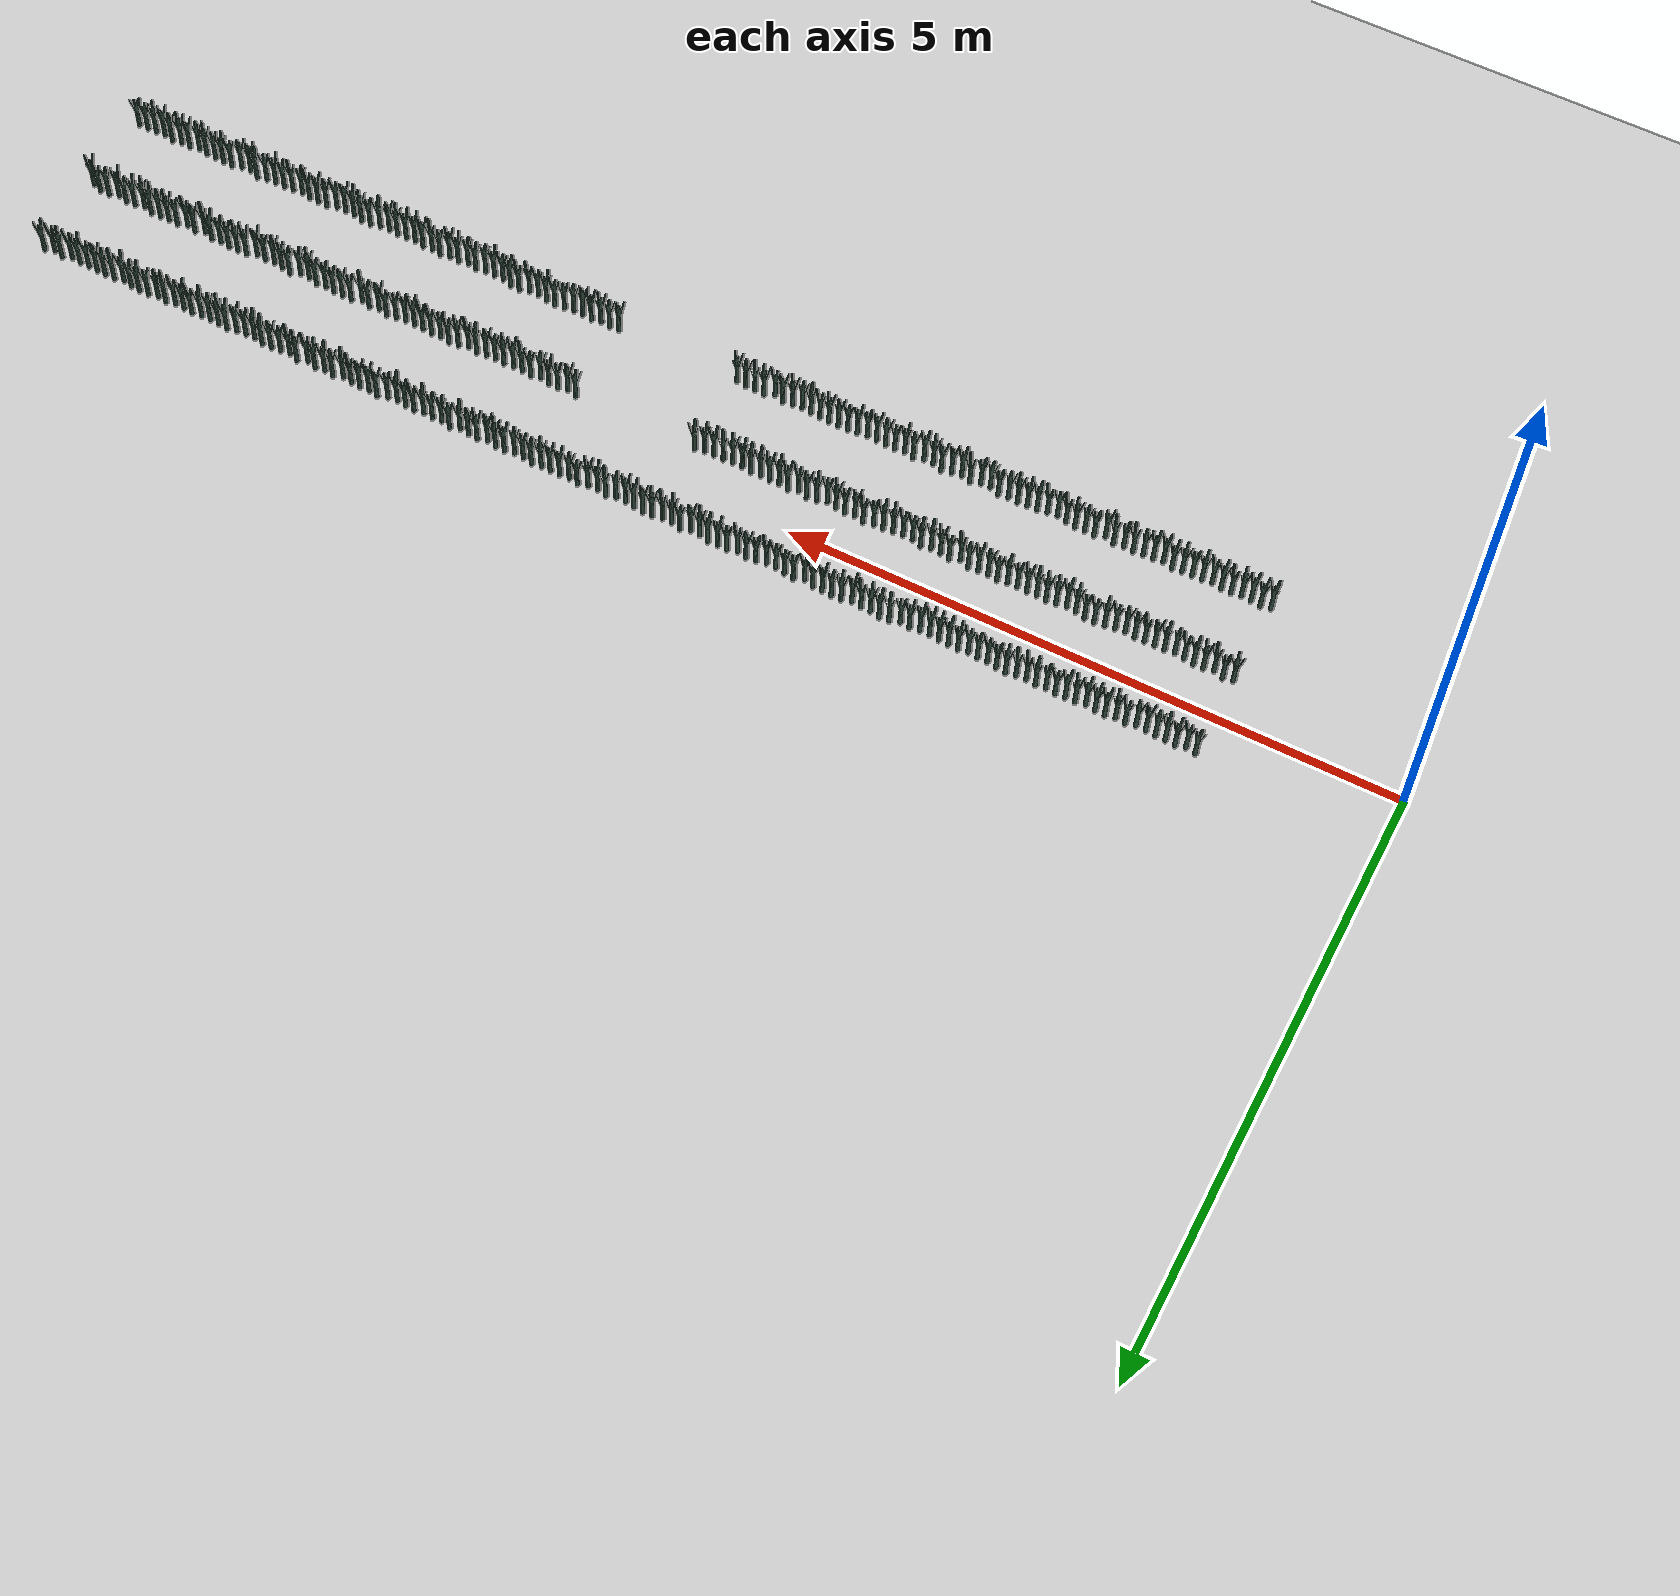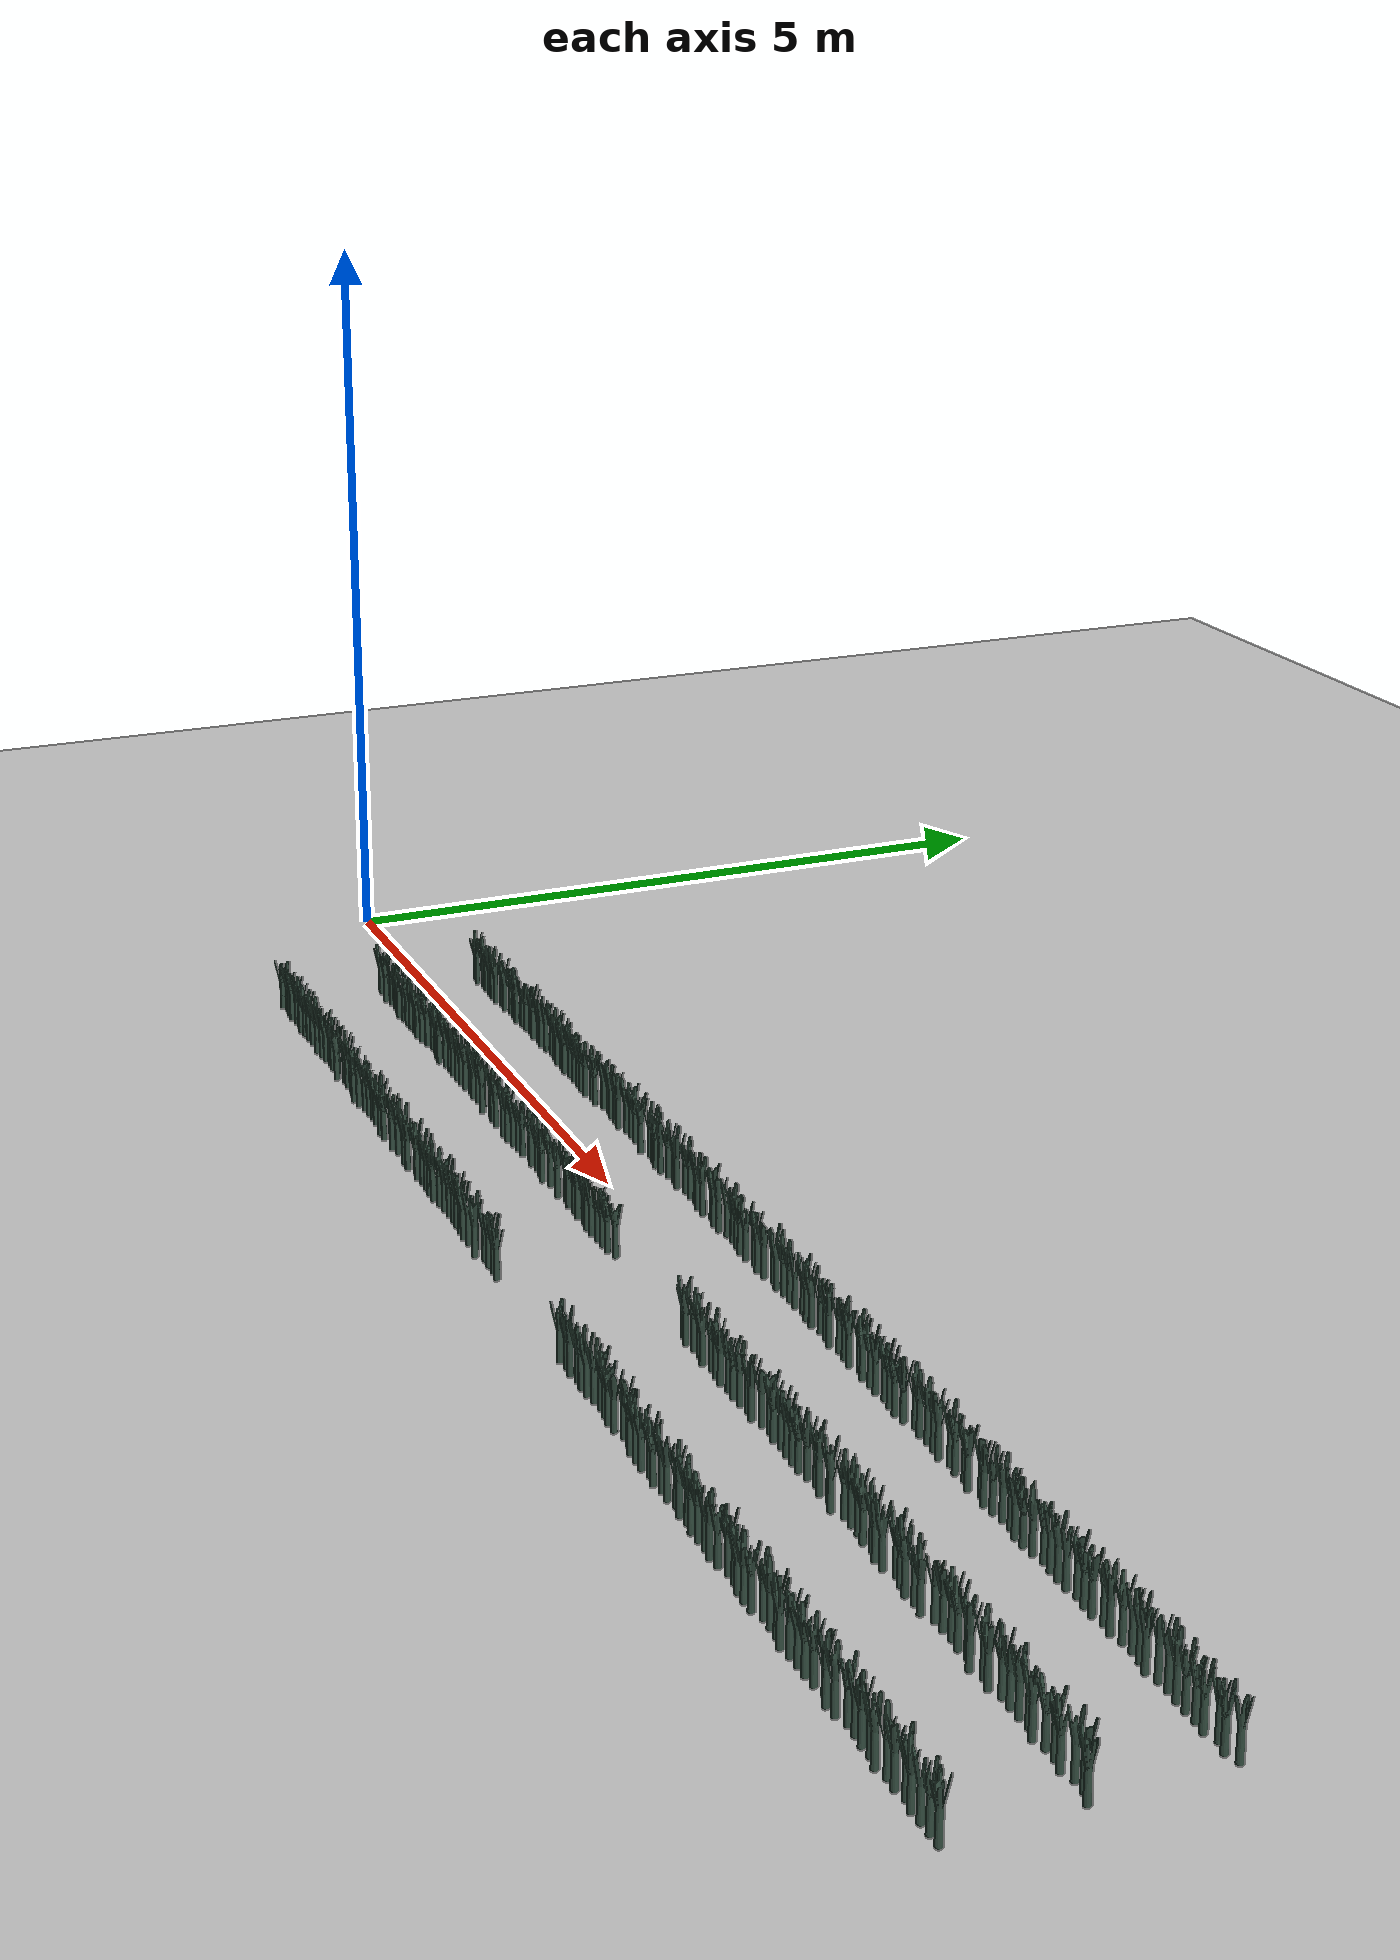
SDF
<sdf version="1.6">
 <world name="default">
  <light name="sun" type="directional">
   <pose>0 0 10 0 -0 0</pose>
   <diffuse>0.5 0.5 0.5 1</diffuse>
   <specular>0.1 0.1 0.1 1</specular>
   <attenuation>
    <range>1000</range>
    <constant>0.9</constant>
    <linear>0.01</linear>
    <quadratic>0.001</quadratic>
   </attenuation>
   <direction>0.9 0.5 -1</direction>
  </light>
  <scene><background>130 200 255 1</background><ambient>130 140 140 1</ambient></scene>
  <include><uri>model://dirt_plane</uri></include>
  <include><uri>model://Leek</uri><pose>1.500000 0.348738 0.15 0 0 -11.359666</pose><static>0</static></include>
  <include>
   <uri>model://Leek</uri>
   <pose>1.580000 0.333221 0.15 0 0 -151.008366</pose>
   <static>0</static>
  </include>
  <include><uri>model://Leek</uri><pose>1.660000 0.351720 0.15 0 0 15.477362</pose><static>0</static></include>
  <include><uri>model://Leek</uri><pose>1.740000 0.344954 0.15 0 0 -45.416736</pose><static>0</static></include>
  <include><uri>model://Leek</uri><pose>1.820000 0.342499 0.15 0 0 -67.511657</pose><static>0</static></include>
  <include>
   <uri>model://Leek</uri>
   <pose>1.900000 0.334902 0.15 0 0 -135.884695</pose>
   <static>0</static>
  </include>
  <include>
   <uri>model://Leek</uri>
   <pose>1.980000 0.331353 0.15 0 0 -167.820252</pose>
   <static>0</static>
  </include>
  <include><uri>model://Leek</uri><pose>2.060000 0.352762 0.15 0 0 24.856615</pose><static>0</static></include>
  <include><uri>model://Leek</uri><pose>2.140000 0.341317 0.15 0 0 -78.144152</pose><static>0</static></include>
  <include><uri>model://Leek</uri><pose>2.220000 0.358856 0.15 0 0 79.706850</pose><static>0</static></include>
  <include><uri>model://Leek</uri><pose>2.300000 0.355204 0.15 0 0 46.836287</pose><static>0</static></include>
  <include><uri>model://Leek</uri><pose>2.380000 0.341253 0.15 0 0 -78.719247</pose><static>0</static></include>
  <include><uri>model://Leek</uri><pose>2.460000 0.357390 0.15 0 0 66.514050</pose><static>0</static></include>
  <include><uri>model://Leek</uri><pose>2.540000 0.356073 0.15 0 0 54.658252</pose><static>0</static></include>
  <include><uri>model://Leek</uri><pose>2.620000 0.362572 0.15 0 0 113.151174</pose><static>0</static></include>
  <include><uri>model://Leek</uri><pose>2.700000 0.349439 0.15 0 0 -5.046876</pose><static>0</static></include>
  <include><uri>model://Leek</uri><pose>2.780000 0.359624 0.15 0 0 86.620214</pose><static>0</static></include>
  <include><uri>model://Leek</uri><pose>2.860000 0.347820 0.15 0 0 -19.620494</pose><static>0</static></include>
  <include><uri>model://Leek</uri><pose>2.940000 0.354084 0.15 0 0 36.755584</pose><static>0</static></include>
  <include><uri>model://Leek</uri><pose>3.020000 0.367821 0.15 0 0 160.388233</pose><static>0</static></include>
  <include><uri>model://Leek</uri><pose>3.100000 0.359192 0.15 0 0 82.731494</pose><static>0</static></include>
  <include><uri>model://Leek</uri><pose>3.180000 0.343723 0.15 0 0 -56.489549</pose><static>0</static></include>
  <include><uri>model://Leek</uri><pose>3.260000 0.346658 0.15 0 0 -30.073911</pose><static>0</static></include>
  <include>
   <uri>model://Leek</uri>
   <pose>3.340000 0.336032 0.15 0 0 -125.714153</pose>
   <static>0</static>
  </include>
  <include><uri>model://Leek</uri><pose>3.420000 0.348940 0.15 0 0 -9.537875</pose><static>0</static></include>
  <include><uri>model://Leek</uri><pose>3.500000 0.344928 0.15 0 0 -45.650852</pose><static>0</static></include>
  <include><uri>model://Leek</uri><pose>3.580000 0.343357 0.15 0 0 -59.785299</pose><static>0</static></include>
  <include>
   <uri>model://Leek</uri>
   <pose>3.660000 0.332327 0.15 0 0 -159.055358</pose>
   <static>0</static>
  </include>
  <include>
   <uri>model://Leek</uri>
   <pose>3.740000 0.331457 0.15 0 0 -166.886024</pose>
   <static>0</static>
  </include>
  <include><uri>model://Leek</uri><pose>3.820000 0.348917 0.15 0 0 -9.749540</pose><static>0</static></include>
  <include>
   <uri>model://Leek</uri>
   <pose>3.900000 0.335416 0.15 0 0 -131.257299</pose>
   <static>0</static>
  </include>
  <include><uri>model://Leek</uri><pose>3.980000 0.364531 0.15 0 0 130.778746</pose><static>0</static></include>
  <include><uri>model://Leek</uri><pose>4.060000 0.369375 0.15 0 0 174.371801</pose><static>0</static></include>
  <include><uri>model://Leek</uri><pose>4.140000 0.353168 0.15 0 0 28.516348</pose><static>0</static></include>
  <include><uri>model://Leek</uri><pose>4.220000 0.352020 0.15 0 0 18.183334</pose><static>0</static></include>
  <include><uri>model://Leek</uri><pose>4.300000 0.339839 0.15 0 0 -91.451803</pose><static>0</static></include>
  <include><uri>model://Leek</uri><pose>4.380000 0.362245 0.15 0 0 110.201775</pose><static>0</static></include>
  <include><uri>model://Leek</uri><pose>4.460000 0.366224 0.15 0 0 146.019617</pose><static>0</static></include>
  <include><uri>model://Leek</uri><pose>4.540000 0.358682 0.15 0 0 78.137586</pose><static>0</static></include>
  <include><uri>model://Leek</uri><pose>4.620000 0.358400 0.15 0 0 75.601485</pose><static>0</static></include>
  <include>
   <uri>model://Leek</uri>
   <pose>4.700000 0.331868 0.15 0 0 -163.186843</pose>
   <static>0</static>
  </include>
  <include><uri>model://Leek</uri><pose>4.780000 0.364064 0.15 0 0 126.572442</pose><static>0</static></include>
  <include><uri>model://Leek</uri><pose>4.860000 0.353533 0.15 0 0 31.793128</pose><static>0</static></include>
  <include>
   <uri>model://Leek</uri>
   <pose>4.940000 0.334684 0.15 0 0 -137.845331</pose>
   <static>0</static>
  </include>
  <include>
   <uri>model://Leek</uri>
   <pose>5.020000 0.334600 0.15 0 0 -138.603666</pose>
   <static>0</static>
  </include>
  <include><uri>model://Leek</uri><pose>5.100000 0.352918 0.15 0 0 26.264780</pose><static>0</static></include>
  <include><uri>model://Leek</uri><pose>5.180000 0.360012 0.15 0 0 90.109463</pose><static>0</static></include>
  <include><uri>model://Leek</uri><pose>5.260000 0.341591 0.15 0 0 -75.680269</pose><static>0</static></include>
  <include><uri>model://Leek</uri><pose>5.340000 0.366113 0.15 0 0 145.020598</pose><static>0</static></include>
  <include><uri>model://Leek</uri><pose>5.420000 0.362188 0.15 0 0 109.691198</pose><static>0</static></include>
  <include><uri>model://Leek</uri><pose>5.500000 0.365884 0.15 0 0 142.953897</pose><static>0</static></include>
  <include><uri>model://Leek</uri><pose>5.580000 0.344116 0.15 0 0 -52.952755</pose><static>0</static></include>
  <include><uri>model://Leek</uri><pose>5.660000 0.340490 0.15 0 0 -85.592345</pose><static>0</static></include>
  <include><uri>model://Leek</uri><pose>5.740000 0.367463 0.15 0 0 157.165037</pose><static>0</static></include>
  <include><uri>model://Leek</uri><pose>5.820000 0.344788 0.15 0 0 -46.906939</pose><static>0</static></include>
  <include><uri>model://Leek</uri><pose>5.900000 0.340849 0.15 0 0 -82.356152</pose><static>0</static></include>
  <include><uri>model://Leek</uri><pose>5.980000 0.360183 0.15 0 0 91.647741</pose><static>0</static></include>
  <include><uri>model://Leek</uri><pose>6.060000 0.362126 0.15 0 0 109.132580</pose><static>0</static></include>
  <include><uri>model://Leek</uri><pose>6.140000 0.351895 0.15 0 0 17.050648</pose><static>0</static></include>
  <include>
   <uri>model://Leek</uri>
   <pose>6.220000 0.337024 0.15 0 0 -116.781532</pose>
   <static>0</static>
  </include>
  <include>
   <uri>model://Leek</uri>
   <pose>6.300000 0.337617 0.15 0 0 -111.443870</pose>
   <static>0</static>
  </include>
  <include><uri>model://Leek</uri><pose>6.380000 0.358279 0.15 0 0 74.507002</pose><static>0</static></include>
  <include>
   <uri>model://Leek</uri>
   <pose>6.460000 0.338496 0.15 0 0 -103.537660</pose>
   <static>0</static>
  </include>
  <include><uri>model://Leek</uri><pose>6.540000 0.342775 0.15 0 0 -65.020835</pose><static>0</static></include>
  <include><uri>model://Leek</uri><pose>6.620000 0.368189 0.15 0 0 163.696988</pose><static>0</static></include>
  <include><uri>model://Leek</uri><pose>6.700000 0.348803 0.15 0 0 -10.768840</pose><static>0</static></include>
  <include><uri>model://Leek</uri><pose>6.780000 0.357306 0.15 0 0 65.749703</pose><static>0</static></include>
  <include><uri>model://Leek</uri><pose>6.860000 0.358685 0.15 0 0 78.162489</pose><static>0</static></include>
  <include><uri>model://Leek</uri><pose>6.940000 0.354590 0.15 0 0 41.308257</pose><static>0</static></include>
  <include><uri>model://Leek</uri><pose>7.020000 0.366249 0.15 0 0 146.242435</pose><static>0</static></include>
  <include><uri>model://Leek</uri><pose>7.100000 0.348714 0.15 0 0 -11.571958</pose><static>0</static></include>
  <include><uri>model://Leek</uri><pose>7.180000 0.341825 0.15 0 0 -73.578949</pose><static>0</static></include>
  <include><uri>model://Leek</uri><pose>7.260000 0.359566 0.15 0 0 86.095735</pose><static>0</static></include>
  <include><uri>model://Leek</uri><pose>7.340000 0.353911 0.15 0 0 35.198604</pose><static>0</static></include>
  <include>
   <uri>model://Leek</uri>
   <pose>7.420000 0.334216 0.15 0 0 -142.053780</pose>
   <static>0</static>
  </include>
  <include><uri>model://Leek</uri><pose>7.500000 0.358134 0.15 0 0 73.206681</pose><static>0</static></include>
  <include><uri>model://Leek</uri><pose>7.580000 0.350947 0.15 0 0 8.524137</pose><static>0</static></include>
  <include>
   <uri>model://Leek</uri>
   <pose>7.660000 0.337996 0.15 0 0 -108.037514</pose>
   <static>0</static>
  </include>
  <include><uri>model://Leek</uri><pose>7.740000 0.364734 0.15 0 0 132.603113</pose><static>0</static></include>
  <include><uri>model://Leek</uri><pose>7.820000 0.341086 0.15 0 0 -80.221534</pose><static>0</static></include>
  <include><uri>model://Leek</uri><pose>7.900000 0.348769 0.15 0 0 -11.076687</pose><static>0</static></include>
  <include><uri>model://Leek</uri><pose>7.980000 0.340101 0.15 0 0 -89.088582</pose><static>0</static></include>
  <include><uri>model://Leek</uri><pose>8.060000 0.353475 0.15 0 0 31.279209</pose><static>0</static></include>
  <include><uri>model://Leek</uri><pose>8.140000 0.343177 0.15 0 0 -61.408374</pose><static>0</static></include>
  <include>
   <uri>model://Leek</uri>
   <pose>8.220000 0.332398 0.15 0 0 -158.418428</pose>
   <static>0</static>
  </include>
  <include><uri>model://Leek</uri><pose>8.300000 0.340343 0.15 0 0 -86.909288</pose><static>0</static></include>
  <include><uri>model://Leek</uri><pose>8.380000 0.369838 0.15 0 0 178.541859</pose><static>0</static></include>
  <include><uri>model://Leek</uri><pose>8.460000 0.353092 0.15 0 0 27.829059</pose><static>0</static></include>
  <include><uri>model://Leek</uri><pose>8.540000 0.357955 0.15 0 0 71.596191</pose><static>0</static></include>
  <include><uri>model://Leek</uri><pose>8.620000 0.351348 0.15 0 0 12.133071</pose><static>0</static></include>
  <include>
   <uri>model://Leek</uri>
   <pose>8.700000 0.335934 0.15 0 0 -126.596109</pose>
   <static>0</static>
  </include>
  <include><uri>model://Leek</uri><pose>8.780000 0.362802 0.15 0 0 115.219007</pose><static>0</static></include>
  <include><uri>model://Leek</uri><pose>8.860000 0.347753 0.15 0 0 -20.226228</pose><static>0</static></include>
  <include><uri>model://Leek</uri><pose>8.940000 0.360849 0.15 0 0 97.637676</pose><static>0</static></include>
  <include>
   <uri>model://Leek</uri>
   <pose>9.020000 0.333234 0.15 0 0 -150.892371</pose>
   <static>0</static>
  </include>
  <include><uri>model://Leek</uri><pose>9.100000 0.367890 0.15 0 0 161.014197</pose><static>0</static></include>
  <include>
   <uri>model://Leek</uri>
   <pose>9.180000 0.337381 0.15 0 0 -113.568190</pose>
   <static>0</static>
  </include>
  <include><uri>model://Leek</uri><pose>9.260000 0.344486 0.15 0 0 -49.621539</pose><static>0</static></include>
  <include><uri>model://Leek</uri><pose>9.340000 0.355130 0.15 0 0 46.169533</pose><static>0</static></include>
  <include><uri>model://Leek</uri><pose>9.420000 0.357553 0.15 0 0 67.979780</pose><static>0</static></include>
  <include>
   <uri>model://Leek</uri>
   <pose>9.500000 0.335900 0.15 0 0 -126.902955</pose>
   <static>0</static>
  </include>
  <include>
   <uri>model://Leek</uri>
   <pose>9.580000 0.336172 0.15 0 0 -124.450185</pose>
   <static>0</static>
  </include>
  <include><uri>model://Leek</uri><pose>9.660000 0.342629 0.15 0 0 -66.337157</pose><static>0</static></include>
  <include><uri>model://Leek</uri><pose>9.740000 0.360308 0.15 0 0 92.776417</pose><static>0</static></include>
  <include><uri>model://Leek</uri><pose>9.820000 0.349696 0.15 0 0 -2.736527</pose><static>0</static></include>
  <include><uri>model://Leek</uri><pose>9.900000 0.345323 0.15 0 0 -42.089501</pose><static>0</static></include>
  <include><uri>model://Leek</uri><pose>9.980000 0.343594 0.15 0 0 -57.653397</pose><static>0</static></include>
  <include><uri>model://Leek</uri><pose>10.060000 0.357659 0.15 0 0 68.928106</pose><static>0</static></include>
  <include>
   <uri>model://Leek</uri>
   <pose>10.140000 0.347037 0.15 0 0 -26.665562</pose>
   <static>0</static>
  </include>
  <include>
   <uri>model://Leek</uri>
   <pose>10.220000 0.341615 0.15 0 0 -75.461721</pose>
   <static>0</static>
  </include>
  <include><uri>model://Leek</uri><pose>10.300000 0.359694 0.15 0 0 87.245448</pose><static>0</static></include>
  <include>
   <uri>model://Leek</uri>
   <pose>10.380000 0.343264 0.15 0 0 -60.622857</pose>
   <static>0</static>
  </include>
  <include>
   <uri>model://Leek</uri>
   <pose>10.460000 0.361296 0.15 0 0 101.661561</pose>
   <static>0</static>
  </include>
  <include>
   <uri>model://Leek</uri>
   <pose>10.540000 0.365916 0.15 0 0 143.247404</pose>
   <static>0</static>
  </include>
  <include><uri>model://Leek</uri><pose>10.620000 0.355759 0.15 0 0 51.834187</pose><static>0</static></include>
  <include>
   <uri>model://Leek</uri>
   <pose>10.700000 0.335901 0.15 0 0 -126.887244</pose>
   <static>0</static>
  </include>
  <include><uri>model://Leek</uri><pose>10.780000 0.354809 0.15 0 0 43.280901</pose><static>0</static></include>
  <include><uri>model://Leek</uri><pose>10.860000 0.357199 0.15 0 0 64.790413</pose><static>0</static></include>
  <include><uri>model://Leek</uri><pose>10.940000 0.349568 0.15 0 0 -3.890641</pose><static>0</static></include>
  <include>
   <uri>model://Leek</uri>
   <pose>11.020000 0.346546 0.15 0 0 -31.082405</pose>
   <static>0</static>
  </include>
  <include>
   <uri>model://Leek</uri>
   <pose>11.100000 0.347747 0.15 0 0 -20.280084</pose>
   <static>0</static>
  </include>
  <include>
   <uri>model://Leek</uri>
   <pose>11.180000 0.336761 0.15 0 0 -119.149273</pose>
   <static>0</static>
  </include>
  <include>
   <uri>model://Leek</uri>
   <pose>11.260000 0.364381 0.15 0 0 129.427983</pose>
   <static>0</static>
  </include>
  <include>
   <uri>model://Leek</uri>
   <pose>11.340000 0.341646 0.15 0 0 -75.190004</pose>
   <static>0</static>
  </include>
  <include>
   <uri>model://Leek</uri>
   <pose>11.420000 0.366614 0.15 0 0 149.522585</pose>
   <static>0</static>
  </include>
  <include><uri>model://Leek</uri><pose>1.500000 -0.346835 0.15 0 0 28.487262</pose><static>0</static></include>
  <include>
   <uri>model://Leek</uri>
   <pose>1.580000 -0.332451 0.15 0 0 157.944243</pose>
   <static>0</static>
  </include>
  <include>
   <uri>model://Leek</uri>
   <pose>1.660000 -0.363370 0.15 0 0 -120.326356</pose>
   <static>0</static>
  </include>
  <include><uri>model://Leek</uri><pose>1.740000 -0.344699 0.15 0 0 47.706971</pose><static>0</static></include>
  <include><uri>model://Leek</uri><pose>1.820000 -0.343200 0.15 0 0 61.195853</pose><static>0</static></include>
  <include>
   <uri>model://Leek</uri>
   <pose>1.900000 -0.354226 0.15 0 0 -38.037433</pose>
   <static>0</static>
  </include>
  <include>
   <uri>model://Leek</uri>
   <pose>1.980000 -0.367994 0.15 0 0 -161.941895</pose>
   <static>0</static>
  </include>
  <include>
   <uri>model://Leek</uri>
   <pose>2.060000 -0.356464 0.15 0 0 -58.171583</pose>
   <static>0</static>
  </include>
  <include>
   <uri>model://Leek</uri>
   <pose>2.140000 -0.358128 0.15 0 0 -73.153223</pose>
   <static>0</static>
  </include>
  <include>
   <uri>model://Leek</uri>
   <pose>2.220000 -0.356356 0.15 0 0 -57.203915</pose>
   <static>0</static>
  </include>
  <include>
   <uri>model://Leek</uri>
   <pose>2.300000 -0.352583 0.15 0 0 -23.245201</pose>
   <static>0</static>
  </include>
  <include>
   <uri>model://Leek</uri>
   <pose>2.380000 -0.363758 0.15 0 0 -123.818227</pose>
   <static>0</static>
  </include>
  <include>
   <uri>model://Leek</uri>
   <pose>2.460000 -0.358387 0.15 0 0 -75.486261</pose>
   <static>0</static>
  </include>
  <include><uri>model://Leek</uri><pose>2.540000 -0.344747 0.15 0 0 47.275745</pose><static>0</static></include>
  <include>
   <uri>model://Leek</uri>
   <pose>2.620000 -0.331150 0.15 0 0 169.650729</pose>
   <static>0</static>
  </include>
  <include>
   <uri>model://Leek</uri>
   <pose>2.700000 -0.333167 0.15 0 0 151.497502</pose>
   <static>0</static>
  </include>
  <include>
   <uri>model://Leek</uri>
   <pose>2.780000 -0.353131 0.15 0 0 -28.181936</pose>
   <static>0</static>
  </include>
  <include>
   <uri>model://Leek</uri>
   <pose>2.860000 -0.365559 0.15 0 0 -140.034045</pose>
   <static>0</static>
  </include>
  <include><uri>model://Leek</uri><pose>2.940000 -0.348224 0.15 0 0 15.985054</pose><static>0</static></include>
  <include><uri>model://Leek</uri><pose>3.020000 -0.341226 0.15 0 0 78.968244</pose><static>0</static></include>
  <include><uri>model://Leek</uri><pose>3.100000 -0.350138 0.15 0 0 -1.240371</pose><static>0</static></include>
  <include><uri>model://Leek</uri><pose>3.180000 -0.346763 0.15 0 0 29.130440</pose><static>0</static></include>
  <include><uri>model://Leek</uri><pose>3.260000 -0.349203 0.15 0 0 7.176423</pose><static>0</static></include>
  <include><uri>model://Leek</uri><pose>3.340000 -0.345973 0.15 0 0 36.243175</pose><static>0</static></include>
  <include>
   <uri>model://Leek</uri>
   <pose>3.420000 -0.333911 0.15 0 0 144.802445</pose>
   <static>0</static>
  </include>
  <include><uri>model://Leek</uri><pose>3.500000 -0.344904 0.15 0 0 45.865001</pose><static>0</static></include>
  <include><uri>model://Leek</uri><pose>3.580000 -0.341144 0.15 0 0 79.700845</pose><static>0</static></include>
  <include>
   <uri>model://Leek</uri>
   <pose>3.660000 -0.331651 0.15 0 0 165.139376</pose>
   <static>0</static>
  </include>
  <include>
   <uri>model://Leek</uri>
   <pose>3.740000 -0.368236 0.15 0 0 -164.125184</pose>
   <static>0</static>
  </include>
  <include>
   <uri>model://Leek</uri>
   <pose>3.820000 -0.334639 0.15 0 0 138.249774</pose>
   <static>0</static>
  </include>
  <include>
   <uri>model://Leek</uri>
   <pose>3.900000 -0.352353 0.15 0 0 -21.174263</pose>
   <static>0</static>
  </include>
  <include>
   <uri>model://Leek</uri>
   <pose>3.980000 -0.358521 0.15 0 0 -76.691065</pose>
   <static>0</static>
  </include>
  <include>
   <uri>model://Leek</uri>
   <pose>4.060000 -0.337589 0.15 0 0 111.694574</pose>
   <static>0</static>
  </include>
  <include>
   <uri>model://Leek</uri>
   <pose>4.140000 -0.364651 0.15 0 0 -131.861671</pose>
   <static>0</static>
  </include>
  <include>
   <uri>model://Leek</uri>
   <pose>4.220000 -0.366766 0.15 0 0 -150.889717</pose>
   <static>0</static>
  </include>
  <include>
   <uri>model://Leek</uri>
   <pose>4.300000 -0.357305 0.15 0 0 -65.741428</pose>
   <static>0</static>
  </include>
  <include><uri>model://Leek</uri><pose>4.380000 -0.350168 0.15 0 0 -1.507670</pose><static>0</static></include>
  <include>
   <uri>model://Leek</uri>
   <pose>4.460000 -0.351292 0.15 0 0 -11.627672</pose>
   <static>0</static>
  </include>
  <include>
   <uri>model://Leek</uri>
   <pose>4.540000 -0.331198 0.15 0 0 169.214152</pose>
   <static>0</static>
  </include>
  <include>
   <uri>model://Leek</uri>
   <pose>4.620000 -0.352537 0.15 0 0 -22.837286</pose>
   <static>0</static>
  </include>
  <include><uri>model://Leek</uri><pose>4.700000 -0.342911 0.15 0 0 63.800849</pose><static>0</static></include>
  <include>
   <uri>model://Leek</uri>
   <pose>4.780000 -0.353080 0.15 0 0 -27.719905</pose>
   <static>0</static>
  </include>
  <include>
   <uri>model://Leek</uri>
   <pose>4.860000 -0.369483 0.15 0 0 -175.342769</pose>
   <static>0</static>
  </include>
  <include><uri>model://Leek</uri><pose>4.940000 -0.343349 0.15 0 0 59.860751</pose><static>0</static></include>
  <include>
   <uri>model://Leek</uri>
   <pose>5.020000 -0.331607 0.15 0 0 165.534929</pose>
   <static>0</static>
  </include>
  <include>
   <uri>model://Leek</uri>
   <pose>5.100000 -0.357687 0.15 0 0 -69.180398</pose>
   <static>0</static>
  </include>
  <include>
   <uri>model://Leek</uri>
   <pose>5.180000 -0.330672 0.15 0 0 173.950224</pose>
   <static>0</static>
  </include>
  <include><uri>model://Leek</uri><pose>5.260000 -0.348068 0.15 0 0 17.386441</pose><static>0</static></include>
  <include><uri>model://Leek</uri><pose>5.340000 -0.341164 0.15 0 0 79.524167</pose><static>0</static></include>
  <include><uri>model://Leek</uri><pose>5.420000 -0.350139 0.15 0 0 -1.250512</pose><static>0</static></include>
  <include><uri>model://Leek</uri><pose>5.500000 -0.341066 0.15 0 0 80.405767</pose><static>0</static></include>
  <include>
   <uri>model://Leek</uri>
   <pose>5.580000 -0.354558 0.15 0 0 -41.024281</pose>
   <static>0</static>
  </include>
  <include>
   <uri>model://Leek</uri>
   <pose>5.660000 -0.356573 0.15 0 0 -59.157076</pose>
   <static>0</static>
  </include>
  <include><uri>model://Leek</uri><pose>5.740000 -0.348015 0.15 0 0 17.862211</pose><static>0</static></include>
  <include><uri>model://Leek</uri><pose>5.820000 -0.350192 0.15 0 0 -1.731747</pose><static>0</static></include>
  <include><uri>model://Leek</uri><pose>5.900000 -0.349651 0.15 0 0 3.142615</pose><static>0</static></include>
  <include>
   <uri>model://Leek</uri>
   <pose>5.980000 -0.331985 0.15 0 0 162.131509</pose>
   <static>0</static>
  </include>
  <include><uri>model://Leek</uri><pose>7.020000 -0.340736 0.15 0 0 83.374748</pose><static>0</static></include>
  <include>
   <uri>model://Leek</uri>
   <pose>7.100000 -0.363713 0.15 0 0 -123.412887</pose>
   <static>0</static>
  </include>
  <include><uri>model://Leek</uri><pose>7.180000 -0.347805 0.15 0 0 19.750931</pose><static>0</static></include>
  <include><uri>model://Leek</uri><pose>7.260000 -0.347584 0.15 0 0 21.740740</pose><static>0</static></include>
  <include>
   <uri>model://Leek</uri>
   <pose>7.340000 -0.366554 0.15 0 0 -148.988119</pose>
   <static>0</static>
  </include>
  <include><uri>model://Leek</uri><pose>7.420000 -0.347161 0.15 0 0 25.548153</pose><static>0</static></include>
  <include>
   <uri>model://Leek</uri>
   <pose>7.500000 -0.357753 0.15 0 0 -69.781282</pose>
   <static>0</static>
  </include>
  <include>
   <uri>model://Leek</uri>
   <pose>7.580000 -0.365560 0.15 0 0 -140.036709</pose>
   <static>0</static>
  </include>
  <include>
   <uri>model://Leek</uri>
   <pose>7.660000 -0.353769 0.15 0 0 -33.922258</pose>
   <static>0</static>
  </include>
  <include>
   <uri>model://Leek</uri>
   <pose>7.740000 -0.361845 0.15 0 0 -106.602743</pose>
   <static>0</static>
  </include>
  <include>
   <uri>model://Leek</uri>
   <pose>7.820000 -0.358825 0.15 0 0 -79.426614</pose>
   <static>0</static>
  </include>
  <include><uri>model://Leek</uri><pose>7.900000 -0.348036 0.15 0 0 17.679187</pose><static>0</static></include>
  <include>
   <uri>model://Leek</uri>
   <pose>7.980000 -0.365401 0.15 0 0 -138.606748</pose>
   <static>0</static>
  </include>
  <include><uri>model://Leek</uri><pose>8.060000 -0.341162 0.15 0 0 79.541144</pose><static>0</static></include>
  <include>
   <uri>model://Leek</uri>
   <pose>8.140000 -0.331858 0.15 0 0 163.277869</pose>
   <static>0</static>
  </include>
  <include><uri>model://Leek</uri><pose>8.220000 -0.348502 0.15 0 0 13.483406</pose><static>0</static></include>
  <include><uri>model://Leek</uri><pose>8.300000 -0.341654 0.15 0 0 75.109804</pose><static>0</static></include>
  <include><uri>model://Leek</uri><pose>8.380000 -0.347926 0.15 0 0 18.667162</pose><static>0</static></include>
  <include>
   <uri>model://Leek</uri>
   <pose>8.460000 -0.352983 0.15 0 0 -26.849863</pose>
   <static>0</static>
  </include>
  <include>
   <uri>model://Leek</uri>
   <pose>8.540000 -0.356824 0.15 0 0 -61.418367</pose>
   <static>0</static>
  </include>
  <include><uri>model://Leek</uri><pose>8.620000 -0.345004 0.15 0 0 44.966901</pose><static>0</static></include>
  <include>
   <uri>model://Leek</uri>
   <pose>8.700000 -0.331828 0.15 0 0 163.550825</pose>
   <static>0</static>
  </include>
  <include>
   <uri>model://Leek</uri>
   <pose>8.780000 -0.355312 0.15 0 0 -47.808349</pose>
   <static>0</static>
  </include>
  <include>
   <uri>model://Leek</uri>
   <pose>8.860000 -0.336557 0.15 0 0 120.984466</pose>
   <static>0</static>
  </include>
  <include>
   <uri>model://Leek</uri>
   <pose>8.940000 -0.367544 0.15 0 0 -157.898234</pose>
   <static>0</static>
  </include>
  <include>
   <uri>model://Leek</uri>
   <pose>9.020000 -0.331730 0.15 0 0 164.427043</pose>
   <static>0</static>
  </include>
  <include>
   <uri>model://Leek</uri>
   <pose>9.100000 -0.334368 0.15 0 0 140.689252</pose>
   <static>0</static>
  </include>
  <include>
   <uri>model://Leek</uri>
   <pose>9.180000 -0.335901 0.15 0 0 126.890882</pose>
   <static>0</static>
  </include>
  <include><uri>model://Leek</uri><pose>9.260000 -0.349165 0.15 0 0 7.515813</pose><static>0</static></include>
  <include>
   <uri>model://Leek</uri>
   <pose>9.340000 -0.337297 0.15 0 0 114.325368</pose>
   <static>0</static>
  </include>
  <include>
   <uri>model://Leek</uri>
   <pose>9.420000 -0.362844 0.15 0 0 -115.595058</pose>
   <static>0</static>
  </include>
  <include>
   <uri>model://Leek</uri>
   <pose>9.500000 -0.364472 0.15 0 0 -130.248116</pose>
   <static>0</static>
  </include>
  <include>
   <uri>model://Leek</uri>
   <pose>9.580000 -0.330971 0.15 0 0 171.257287</pose>
   <static>0</static>
  </include>
  <include><uri>model://Leek</uri><pose>9.660000 -0.349180 0.15 0 0 7.376640</pose><static>0</static></include>
  <include>
   <uri>model://Leek</uri>
   <pose>9.740000 -0.365822 0.15 0 0 -142.401771</pose>
   <static>0</static>
  </include>
  <include>
   <uri>model://Leek</uri>
   <pose>9.820000 -0.355519 0.15 0 0 -49.674649</pose>
   <static>0</static>
  </include>
  <include>
   <uri>model://Leek</uri>
   <pose>9.900000 -0.367140 0.15 0 0 -154.263904</pose>
   <static>0</static>
  </include>
  <include>
   <uri>model://Leek</uri>
   <pose>9.980000 -0.334162 0.15 0 0 142.540705</pose>
   <static>0</static>
  </include>
  <include>
   <uri>model://Leek</uri>
   <pose>10.060000 -0.332791 0.15 0 0 154.883431</pose>
   <static>0</static>
  </include>
  <include>
   <uri>model://Leek</uri>
   <pose>10.140000 -0.331027 0.15 0 0 170.757671</pose>
   <static>0</static>
  </include>
  <include>
   <uri>model://Leek</uri>
   <pose>10.220000 -0.341468 0.15 0 0 76.788773</pose>
   <static>0</static>
  </include>
  <include>
   <uri>model://Leek</uri>
   <pose>10.300000 -0.333407 0.15 0 0 149.333267</pose>
   <static>0</static>
  </include>
  <include>
   <uri>model://Leek</uri>
   <pose>10.380000 -0.367525 0.15 0 0 -157.725924</pose>
   <static>0</static>
  </include>
  <include>
   <uri>model://Leek</uri>
   <pose>10.460000 -0.337867 0.15 0 0 109.193541</pose>
   <static>0</static>
  </include>
  <include>
   <uri>model://Leek</uri>
   <pose>10.540000 -0.361199 0.15 0 0 -100.787427</pose>
   <static>0</static>
  </include>
  <include>
   <uri>model://Leek</uri>
   <pose>10.620000 -0.333111 0.15 0 0 152.004252</pose>
   <static>0</static>
  </include>
  <include>
   <uri>model://Leek</uri>
   <pose>10.700000 -0.336286 0.15 0 0 123.427145</pose>
   <static>0</static>
  </include>
  <include>
   <uri>model://Leek</uri>
   <pose>10.780000 -0.336501 0.15 0 0 121.493383</pose>
   <static>0</static>
  </include>
  <include>
   <uri>model://Leek</uri>
   <pose>10.860000 -0.330779 0.15 0 0 172.992590</pose>
   <static>0</static>
  </include>
  <include>
   <uri>model://Leek</uri>
   <pose>10.940000 -0.360054 0.15 0 0 -90.482793</pose>
   <static>0</static>
  </include>
  <include>
   <uri>model://Leek</uri>
   <pose>11.020000 -0.339859 0.15 0 0 91.272332</pose>
   <static>0</static>
  </include>
  <include>
   <uri>model://Leek</uri>
   <pose>11.100000 -0.338822 0.15 0 0 100.606346</pose>
   <static>0</static>
  </include>
  <include>
   <uri>model://Leek</uri>
   <pose>11.180000 -0.359434 0.15 0 0 -84.904815</pose>
   <static>0</static>
  </include>
  <include>
   <uri>model://Leek</uri>
   <pose>11.260000 -0.333732 0.15 0 0 146.408997</pose>
   <static>0</static>
  </include>
  <include>
   <uri>model://Leek</uri>
   <pose>11.340000 -0.334656 0.15 0 0 138.099947</pose>
   <static>0</static>
  </include>
  <include>
   <uri>model://Leek</uri>
   <pose>11.420000 -0.366249 0.15 0 0 -146.241465</pose>
   <static>0</static>
  </include>
  <include>
   <uri>model://Leek</uri>
   <pose>1.500000 -1.054393 0.15 0 0 -39.539240</pose>
   <static>0</static>
  </include>
  <include>
   <uri>model://Leek</uri>
   <pose>1.580000 -1.037826 0.15 0 0 109.569794</pose>
   <static>0</static>
  </include>
  <include><uri>model://Leek</uri><pose>1.660000 -1.048821 0.15 0 0 10.608142</pose><static>0</static></include>
  <include>
   <uri>model://Leek</uri>
   <pose>1.740000 -1.055205 0.15 0 0 -46.849197</pose>
   <static>0</static>
  </include>
  <include><uri>model://Leek</uri><pose>1.820000 -1.043108 0.15 0 0 62.027523</pose><static>0</static></include>
  <include><uri>model://Leek</uri><pose>1.900000 -1.042682 0.15 0 0 65.861677</pose><static>0</static></include>
  <include>
   <uri>model://Leek</uri>
   <pose>1.980000 -1.060511 0.15 0 0 -94.595934</pose>
   <static>0</static>
  </include>
  <include>
   <uri>model://Leek</uri>
   <pose>2.060000 -1.053143 0.15 0 0 -28.282883</pose>
   <static>0</static>
  </include>
  <include>
   <uri>model://Leek</uri>
   <pose>2.140000 -1.051295 0.15 0 0 -11.653784</pose>
   <static>0</static>
  </include>
  <include><uri>model://Leek</uri><pose>2.220000 -1.046847 0.15 0 0 28.373862</pose><static>0</static></include>
  <include>
   <uri>model://Leek</uri>
   <pose>2.300000 -1.036411 0.15 0 0 122.300936</pose>
   <static>0</static>
  </include>
  <include>
   <uri>model://Leek</uri>
   <pose>2.380000 -1.059298 0.15 0 0 -83.679351</pose>
   <static>0</static>
  </include>
  <include><uri>model://Leek</uri><pose>2.460000 -1.050910 0.15 0 0 -8.192855</pose><static>0</static></include>
  <include><uri>model://Leek</uri><pose>2.540000 -1.047006 0.15 0 0 26.948706</pose><static>0</static></include>
  <include>
   <uri>model://Leek</uri>
   <pose>2.620000 -1.037541 0.15 0 0 112.133932</pose>
   <static>0</static>
  </include>
  <include><uri>model://Leek</uri><pose>2.700000 -1.046380 0.15 0 0 32.577950</pose><static>0</static></include>
  <include>
   <uri>model://Leek</uri>
   <pose>2.780000 -1.032665 0.15 0 0 156.016402</pose>
   <static>0</static>
  </include>
  <include>
   <uri>model://Leek</uri>
   <pose>2.860000 -1.065807 0.15 0 0 -142.259687</pose>
   <static>0</static>
  </include>
  <include>
   <uri>model://Leek</uri>
   <pose>2.940000 -1.033128 0.15 0 0 151.844220</pose>
   <static>0</static>
  </include>
  <include><uri>model://Leek</uri><pose>3.020000 -1.039367 0.15 0 0 95.696852</pose><static>0</static></include>
  <include>
   <uri>model://Leek</uri>
   <pose>3.100000 -1.034947 0.15 0 0 135.475676</pose>
   <static>0</static>
  </include>
  <include><uri>model://Leek</uri><pose>3.180000 -1.047278 0.15 0 0 24.493507</pose><static>0</static></include>
  <include>
   <uri>model://Leek</uri>
   <pose>3.260000 -1.068807 0.15 0 0 -169.266966</pose>
   <static>0</static>
  </include>
  <include>
   <uri>model://Leek</uri>
   <pose>3.340000 -1.059134 0.15 0 0 -82.206692</pose>
   <static>0</static>
  </include>
  <include><uri>model://Leek</uri><pose>3.420000 -1.043199 0.15 0 0 61.206971</pose><static>0</static></include>
  <include><uri>model://Leek</uri><pose>3.500000 -1.040587 0.15 0 0 84.715133</pose><static>0</static></include>
  <include>
   <uri>model://Leek</uri>
   <pose>3.580000 -1.037741 0.15 0 0 110.328060</pose>
   <static>0</static>
  </include>
  <include><uri>model://Leek</uri><pose>3.660000 -1.044219 0.15 0 0 52.030678</pose><static>0</static></include>
  <include>
   <uri>model://Leek</uri>
   <pose>3.740000 -1.032431 0.15 0 0 158.118387</pose>
   <static>0</static>
  </include>
  <include>
   <uri>model://Leek</uri>
   <pose>3.820000 -1.063787 0.15 0 0 -124.083670</pose>
   <static>0</static>
  </include>
  <include>
   <uri>model://Leek</uri>
   <pose>3.900000 -1.065232 0.15 0 0 -137.087631</pose>
   <static>0</static>
  </include>
  <include>
   <uri>model://Leek</uri>
   <pose>3.980000 -1.035430 0.15 0 0 131.132985</pose>
   <static>0</static>
  </include>
  <include>
   <uri>model://Leek</uri>
   <pose>4.060000 -1.062072 0.15 0 0 -108.650742</pose>
   <static>0</static>
  </include>
  <include><uri>model://Leek</uri><pose>4.140000 -1.048336 0.15 0 0 14.979980</pose><static>0</static></include>
  <include>
   <uri>model://Leek</uri>
   <pose>4.220000 -1.030188 0.15 0 0 178.307314</pose>
   <static>0</static>
  </include>
  <include>
   <uri>model://Leek</uri>
   <pose>4.300000 -1.056601 0.15 0 0 -59.406592</pose>
   <static>0</static>
  </include>
  <include>
   <uri>model://Leek</uri>
   <pose>4.380000 -1.062077 0.15 0 0 -108.692941</pose>
   <static>0</static>
  </include>
  <include>
   <uri>model://Leek</uri>
   <pose>4.460000 -1.033035 0.15 0 0 152.682928</pose>
   <static>0</static>
  </include>
  <include>
   <uri>model://Leek</uri>
   <pose>4.540000 -1.053864 0.15 0 0 -34.778882</pose>
   <static>0</static>
  </include>
  <include><uri>model://Leek</uri><pose>4.620000 -1.043664 0.15 0 0 57.024909</pose><static>0</static></include>
  <include><uri>model://Leek</uri><pose>4.700000 -1.044906 0.15 0 0 45.850167</pose><static>0</static></include>
  <include>
   <uri>model://Leek</uri>
   <pose>4.780000 -1.051119 0.15 0 0 -10.067422</pose>
   <static>0</static>
  </include>
  <include>
   <uri>model://Leek</uri>
   <pose>4.860000 -1.056157 0.15 0 0 -55.411848</pose>
   <static>0</static>
  </include>
  <include><uri>model://Leek</uri><pose>4.940000 -1.042023 0.15 0 0 71.797183</pose><static>0</static></include>
  <include>
   <uri>model://Leek</uri>
   <pose>5.020000 -1.038810 0.15 0 0 100.710016</pose>
   <static>0</static>
  </include>
  <include>
   <uri>model://Leek</uri>
   <pose>5.100000 -1.035109 0.15 0 0 134.019092</pose>
   <static>0</static>
  </include>
  <include>
   <uri>model://Leek</uri>
   <pose>5.180000 -1.035603 0.15 0 0 129.571022</pose>
   <static>0</static>
  </include>
  <include><uri>model://Leek</uri><pose>5.260000 -1.040943 0.15 0 0 81.514680</pose><static>0</static></include>
  <include><uri>model://Leek</uri><pose>5.340000 -1.045939 0.15 0 0 36.549943</pose><static>0</static></include>
  <include>
   <uri>model://Leek</uri>
   <pose>5.420000 -1.056090 0.15 0 0 -54.808429</pose>
   <static>0</static>
  </include>
  <include><uri>model://Leek</uri><pose>5.500000 -1.049582 0.15 0 0 3.764062</pose><static>0</static></include>
  <include>
   <uri>model://Leek</uri>
   <pose>5.580000 -1.032275 0.15 0 0 159.522585</pose>
   <static>0</static>
  </include>
  <include>
   <uri>model://Leek</uri>
   <pose>5.660000 -1.067455 0.15 0 0 -157.097279</pose>
   <static>0</static>
  </include>
  <include>
   <uri>model://Leek</uri>
   <pose>5.740000 -1.032143 0.15 0 0 160.714539</pose>
   <static>0</static>
  </include>
  <include>
   <uri>model://Leek</uri>
   <pose>5.820000 -1.036142 0.15 0 0 124.722813</pose>
   <static>0</static>
  </include>
  <include>
   <uri>model://Leek</uri>
   <pose>5.900000 -1.036522 0.15 0 0 121.302728</pose>
   <static>0</static>
  </include>
  <include><uri>model://Leek</uri><pose>5.980000 -1.046071 0.15 0 0 35.363295</pose><static>0</static></include>
  <include>
   <uri>model://Leek</uri>
   <pose>7.020000 -1.051824 0.15 0 0 -16.418209</pose>
   <static>0</static>
  </include>
  <include><uri>model://Leek</uri><pose>7.100000 -1.043507 0.15 0 0 58.436517</pose><static>0</static></include>
  <include>
   <uri>model://Leek</uri>
   <pose>7.180000 -1.053739 0.15 0 0 -33.652122</pose>
   <static>0</static>
  </include>
  <include><uri>model://Leek</uri><pose>7.260000 -1.039750 0.15 0 0 92.253282</pose><static>0</static></include>
  <include><uri>model://Leek</uri><pose>7.340000 -1.050446 0.15 0 0 -4.013753</pose><static>0</static></include>
  <include>
   <uri>model://Leek</uri>
   <pose>7.420000 -1.051888 0.15 0 0 -16.990833</pose>
   <static>0</static>
  </include>
  <include><uri>model://Leek</uri><pose>7.500000 -1.040145 0.15 0 0 88.695894</pose><static>0</static></include>
  <include>
   <uri>model://Leek</uri>
   <pose>7.580000 -1.030437 0.15 0 0 176.070802</pose>
   <static>0</static>
  </include>
  <include><uri>model://Leek</uri><pose>7.660000 -1.040575 0.15 0 0 84.824590</pose><static>0</static></include>
  <include>
   <uri>model://Leek</uri>
   <pose>7.740000 -1.054868 0.15 0 0 -43.814920</pose>
   <static>0</static>
  </include>
  <include>
   <uri>model://Leek</uri>
   <pose>7.820000 -1.055626 0.15 0 0 -50.637020</pose>
   <static>0</static>
  </include>
  <include>
   <uri>model://Leek</uri>
   <pose>7.900000 -1.030492 0.15 0 0 175.574350</pose>
   <static>0</static>
  </include>
  <include>
   <uri>model://Leek</uri>
   <pose>7.980000 -1.035512 0.15 0 0 130.391468</pose>
   <static>0</static>
  </include>
  <include>
   <uri>model://Leek</uri>
   <pose>8.060000 -1.061147 0.15 0 0 -100.326851</pose>
   <static>0</static>
  </include>
  <include>
   <uri>model://Leek</uri>
   <pose>8.140000 -1.062204 0.15 0 0 -109.837964</pose>
   <static>0</static>
  </include>
  <include>
   <uri>model://Leek</uri>
   <pose>8.220000 -1.064472 0.15 0 0 -130.247109</pose>
   <static>0</static>
  </include>
  <include><uri>model://Leek</uri><pose>8.300000 -1.048427 0.15 0 0 14.153557</pose><static>0</static></include>
  <include>
   <uri>model://Leek</uri>
   <pose>8.380000 -1.067283 0.15 0 0 -155.543605</pose>
   <static>0</static>
  </include>
  <include><uri>model://Leek</uri><pose>8.460000 -1.050340 0.15 0 0 -3.056693</pose><static>0</static></include>
  <include>
   <uri>model://Leek</uri>
   <pose>8.540000 -1.057913 0.15 0 0 -71.215105</pose>
   <static>0</static>
  </include>
  <include><uri>model://Leek</uri><pose>8.620000 -1.039435 0.15 0 0 95.084954</pose><static>0</static></include>
  <include>
   <uri>model://Leek</uri>
   <pose>8.700000 -1.057751 0.15 0 0 -69.761368</pose>
   <static>0</static>
  </include>
  <include><uri>model://Leek</uri><pose>8.780000 -1.048314 0.15 0 0 15.177306</pose><static>0</static></include>
  <include>
   <uri>model://Leek</uri>
   <pose>8.860000 -1.065029 0.15 0 0 -135.257880</pose>
   <static>0</static>
  </include>
  <include>
   <uri>model://Leek</uri>
   <pose>8.940000 -1.060834 0.15 0 0 -97.505050</pose>
   <static>0</static>
  </include>
  <include>
   <uri>model://Leek</uri>
   <pose>9.020000 -1.058678 0.15 0 0 -78.098076</pose>
   <static>0</static>
  </include>
  <include>
   <uri>model://Leek</uri>
   <pose>9.100000 -1.069975 0.15 0 0 -179.770736</pose>
   <static>0</static>
  </include>
  <include>
   <uri>model://Leek</uri>
   <pose>9.180000 -1.061998 0.15 0 0 -107.984461</pose>
   <static>0</static>
  </include>
  <include><uri>model://Leek</uri><pose>9.260000 -1.043573 0.15 0 0 57.842024</pose><static>0</static></include>
  <include><uri>model://Leek</uri><pose>9.340000 -1.044689 0.15 0 0 47.798620</pose><static>0</static></include>
  <include>
   <uri>model://Leek</uri>
   <pose>9.420000 -1.064985 0.15 0 0 -134.867978</pose>
   <static>0</static>
  </include>
  <include>
   <uri>model://Leek</uri>
   <pose>9.500000 -1.067855 0.15 0 0 -160.691188</pose>
   <static>0</static>
  </include>
  <include>
   <uri>model://Leek</uri>
   <pose>9.580000 -1.067432 0.15 0 0 -156.889733</pose>
   <static>0</static>
  </include>
  <include><uri>model://Leek</uri><pose>9.660000 -1.041370 0.15 0 0 77.667406</pose><static>0</static></include>
  <include><uri>model://Leek</uri><pose>9.740000 -1.043403 0.15 0 0 59.372228</pose><static>0</static></include>
  <include><uri>model://Leek</uri><pose>9.820000 -1.045832 0.15 0 0 37.511767</pose><static>0</static></include>
  <include>
   <uri>model://Leek</uri>
   <pose>9.900000 -1.067971 0.15 0 0 -161.734833</pose>
   <static>0</static>
  </include>
  <include>
   <uri>model://Leek</uri>
   <pose>9.980000 -1.055627 0.15 0 0 -50.646798</pose>
   <static>0</static>
  </include>
  <include>
   <uri>model://Leek</uri>
   <pose>10.060000 -1.051917 0.15 0 0 -17.252015</pose>
   <static>0</static>
  </include>
  <include>
   <uri>model://Leek</uri>
   <pose>10.140000 -1.054551 0.15 0 0 -40.959769</pose>
   <static>0</static>
  </include>
  <include><uri>model://Leek</uri><pose>10.220000 -1.049912 0.15 0 0 0.790653</pose><static>0</static></include>
  <include>
   <uri>model://Leek</uri>
   <pose>10.300000 -1.030581 0.15 0 0 174.767349</pose>
   <static>0</static>
  </include>
  <include>
   <uri>model://Leek</uri>
   <pose>10.380000 -1.065782 0.15 0 0 -142.036505</pose>
   <static>0</static>
  </include>
  <include>
   <uri>model://Leek</uri>
   <pose>10.460000 -1.060899 0.15 0 0 -98.090795</pose>
   <static>0</static>
  </include>
  <include>
   <uri>model://Leek</uri>
   <pose>10.540000 -1.036003 0.15 0 0 125.970567</pose>
   <static>0</static>
  </include>
  <include>
   <uri>model://Leek</uri>
   <pose>10.620000 -1.039145 0.15 0 0 97.691742</pose>
   <static>0</static>
  </include>
  <include>
   <uri>model://Leek</uri>
   <pose>10.700000 -1.047798 0.15 0 0 19.816539</pose>
   <static>0</static>
  </include>
  <include>
   <uri>model://Leek</uri>
   <pose>10.780000 -1.044696 0.15 0 0 47.733136</pose>
   <static>0</static>
  </include>
  <include>
   <uri>model://Leek</uri>
   <pose>10.860000 -1.064419 0.15 0 0 -129.774920</pose>
   <static>0</static>
  </include>
  <include>
   <uri>model://Leek</uri>
   <pose>10.940000 -1.044109 0.15 0 0 53.016923</pose>
   <static>0</static>
  </include>
  <include>
   <uri>model://Leek</uri>
   <pose>11.020000 -1.050954 0.15 0 0 -8.583610</pose>
   <static>0</static>
  </include>
  <include>
   <uri>model://Leek</uri>
   <pose>11.100000 -1.036500 0.15 0 0 121.503039</pose>
   <static>0</static>
  </include>
  <include>
   <uri>model://Leek</uri>
   <pose>11.180000 -1.054577 0.15 0 0 -41.193677</pose>
   <static>0</static>
  </include>
  <include>
   <uri>model://Leek</uri>
   <pose>11.260000 -1.050993 0.15 0 0 -8.932935</pose>
   <static>0</static>
  </include>
  <include><uri>model://Leek</uri><pose>11.340000 -1.049251 0.15 0 0 6.739673</pose><static>0</static></include>
  <include><uri>model://Leek</uri><pose>11.420000 -1.049886 0.15 0 0 1.024234</pose><static>0</static></include>
 </world>
</sdf>

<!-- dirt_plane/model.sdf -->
<sdf version="1.4">
<model name="dirt_plane">
  <static>true</static>
    <link name="link">
      <collision name="collision">
        <geometry>
          <plane>
            <normal>0 0 1</normal>
            <size>100 100</size>
          </plane>
        </geometry>
        <surface>
          <friction>
            <ode>
              <mu>0.99</mu>
              <mu2>0.99</mu2>
            </ode>
          </friction>
        </surface>
      </collision>
      <visual name="visual">
        <cast_shadows>false</cast_shadows>
        <geometry>
          <plane>
            <normal>0 0 1</normal>
            <size>100 100</size>
          </plane>
        </geometry>
        <material>
          <script>
            <uri>model://ground_plane/materials/scripts/my_ground_plane.material</uri>
            <uri>model://ground_plane/materials/textures</uri>
            <name>my_ground_plane/Dirt</name>
          </script>
        </material>
      </visual>
    </link>
  </model>
</sdf>

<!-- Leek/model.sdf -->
<sdf version='1.6'>
  <model name='Leek'>
    <link name='link'>
      <pose frame=''>0 0 0 0 -0 0</pose>
      <inertial>
        <mass>1</mass>
        <inertia>
          <ixx>0.145833</ixx>
          <ixy>0</ixy>
          <ixz>0</ixz>
          <iyy>0.145833</iyy>
          <iyz>0</iyz>
          <izz>0.125</izz>
        </inertia>
        <pose frame=''>0 0 0 0 -0 0</pose>
      </inertial>
      <self_collide>0</self_collide>
      <kinematic>0</kinematic>
      <gravity>1</gravity>
      <visual name='visual'>
        <geometry>
          <mesh>
            <uri>model://Leek/Poireau.dae</uri>
            <scale>1 1 1</scale>
          </mesh>
        </geometry>
        <material>
          <script>
            <name>Gazebo/Grey</name>
            <uri>file://media/materials/scripts/gazebo.material</uri>
          </script>
          <ambient>0.3 0.6 0.5 0</ambient>
          <diffuse>0.2 0.3 0.25 0</diffuse>
          <specular>0 0 0 1</specular>
          <emissive>0 0 0 1</emissive>
          <shader type='vertex'>
            <normal_map>__default__</normal_map>
          </shader>
        </material>
        <pose frame=''>0 0 -0.08 0 -0 0</pose>
        <cast_shadows>1</cast_shadows>
        <transparency>0</transparency>
      </visual>
      <collision name='collision'>
        <laser_retro>0</laser_retro>
        <max_contacts>10</max_contacts>
        <pose frame=''>0 0 0 0 -0 0</pose>
        <geometry>
          <cylinder>
            <radius>0.02</radius>
            <length>0.25</length>
          </cylinder>
        </geometry>
        <surface>
          <friction>
            <ode>
              <mu>1</mu>
              <mu2>1</mu2>
              <fdir1>0 0 0</fdir1>
              <slip1>0</slip1>
              <slip2>0</slip2>
            </ode>
            <torsional>
              <coefficient>1</coefficient>
              <patch_radius>0</patch_radius>
              <surface_radius>0</surface_radius>
              <use_patch_radius>1</use_patch_radius>
              <ode>
                <slip>0</slip>
              </ode>
            </torsional>
          </friction>
          <bounce>
            <restitution_coefficient>0</restitution_coefficient>
            <threshold>1e+06</threshold>
          </bounce>
          <contact>
            <collide_without_contact>0</collide_without_contact>
            <collide_without_contact_bitmask>1</collide_without_contact_bitmask>
            <collide_bitmask>1</collide_bitmask>
            <ode>
              <soft_cfm>0</soft_cfm>
              <soft_erp>0.2</soft_erp>
              <kp>1e+13</kp>
              <kd>1</kd>
              <max_vel>0.01</max_vel>
              <min_depth>0</min_depth>
            </ode>
            <bullet>
              <split_impulse>1</split_impulse>
              <split_impulse_penetration_threshold>-0.01</split_impulse_penetration_threshold>
              <soft_cfm>0</soft_cfm>
              <soft_erp>0.2</soft_erp>
              <kp>1e+13</kp>
              <kd>1</kd>
            </bullet>
          </contact>
        </surface>
      </collision>
    </link>
    <static>0</static>
    <allow_auto_disable>1</allow_auto_disable>
  </model>
</sdf>
